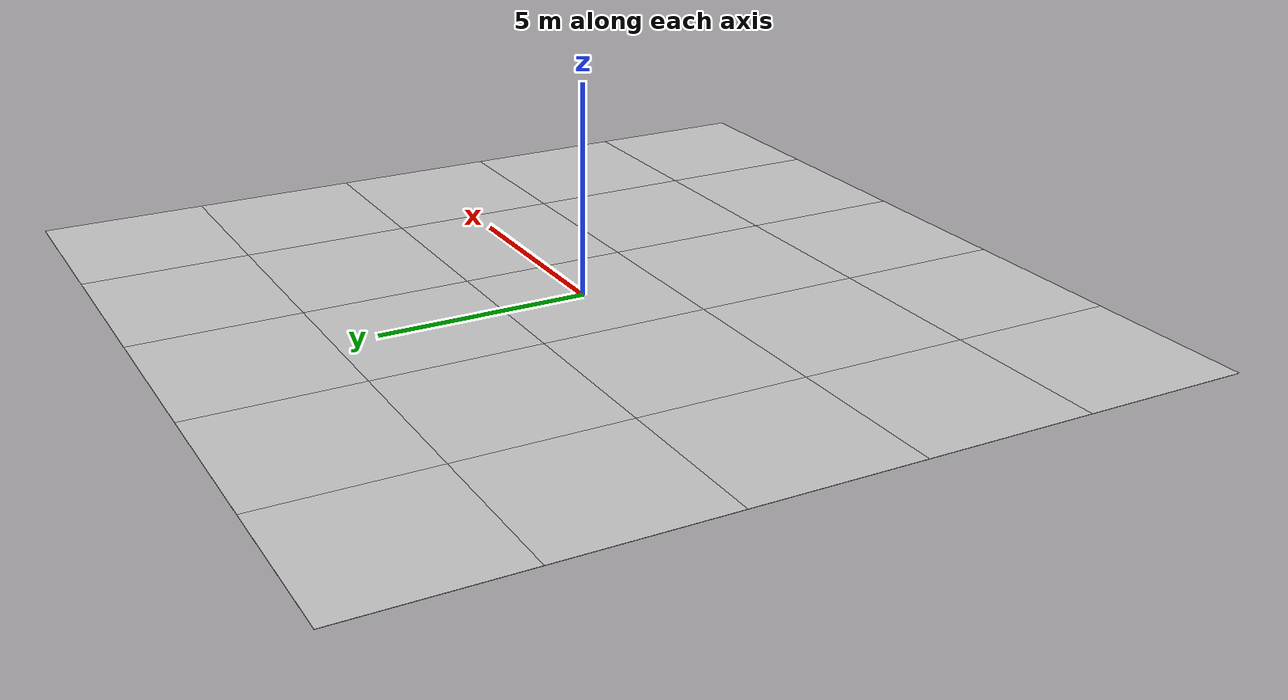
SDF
<?xml version="1.0" ?>
<sdf version="1.7">
<model name="rocky_asphalt_20x20">
    <pose>0 0 0 0 0 0</pose>
    <static>true</static>

    <include>
        <name>rocky asphalt (-8, -8)</name>
        <uri>model://rocky_asphalt_4x4</uri>
        <pose>-8 -8 0 0 0 0</pose>
    </include>
    <include>
        <name>rocky asphalt (-4, -8)</name>
        <uri>model://rocky_asphalt_4x4</uri>
        <pose>-4 -8 0 0 0 0</pose>
    </include>
    <include>
        <name>rocky asphalt (0, -8)</name>
        <uri>model://rocky_asphalt_4x4</uri>
        <pose>0 -8 0 0 0 0</pose>
    </include>
    <include>
        <name>rocky asphalt (4, -8)</name>
        <uri>model://rocky_asphalt_4x4</uri>
        <pose>4 -8 0 0 0 0</pose>
    </include>
    <include>
        <name>rocky asphalt (8, -8)</name>
        <uri>model://rocky_asphalt_4x4</uri>
        <pose>8 -8 0 0 0 0</pose>
    </include>

    <include>
        <name>rocky asphalt (-8, -4)</name>
        <uri>model://rocky_asphalt_4x4</uri>
        <pose>-8 -4 0 0 0 0</pose>
    </include>
    <include>
        <name>rocky asphalt (-4, -4)</name>
        <uri>model://rocky_asphalt_4x4</uri>
        <pose>-4 -4 0 0 0 0</pose>
    </include>
    <include>
        <name>rocky asphalt (0, -4)</name>
        <uri>model://rocky_asphalt_4x4</uri>
        <pose>0 -4 0 0 0 0</pose>
    </include>
    <include>
        <name>rocky asphalt (4, -4)</name>
        <uri>model://rocky_asphalt_4x4</uri>
        <pose>4 -4 0 0 0 0</pose>
    </include>
    <include>
        <name>rocky asphalt (8, -4)</name>
        <uri>model://rocky_asphalt_4x4</uri>
        <pose>8 -4 0 0 0 0</pose>
    </include>

    <include>
        <name>rocky asphalt (-8, 0)</name>
        <uri>model://rocky_asphalt_4x4</uri>
        <pose>-8 0 0 0 0 0</pose>
    </include>
    <include>
        <name>rocky asphalt (-4, 0)</name>
        <uri>model://rocky_asphalt_4x4</uri>
        <pose>-4 0 0 0 0 0</pose>
    </include>
    <include>
        <name>rocky asphalt (0, 0)</name>
        <uri>model://rocky_asphalt_4x4</uri>
        <pose>0 0 0 0 0 0</pose>
    </include>
    <include>
        <name>rocky asphalt (4, 0)</name>
        <uri>model://rocky_asphalt_4x4</uri>
        <pose>4 0 0 0 0 0</pose>
    </include>
    <include>
        <name>rocky asphalt (8, 0)</name>
        <uri>model://rocky_asphalt_4x4</uri>
        <pose>8 0 0 0 0 0</pose>
    </include>

    <include>
        <name>rocky asphalt (-8, 4)</name>
        <uri>model://rocky_asphalt_4x4</uri>
        <pose>-8 4 0 0 0 0</pose>
    </include>
    <include>
        <name>rocky asphalt (-4, 4)</name>
        <uri>model://rocky_asphalt_4x4</uri>
        <pose>-4 4 0 0 0 0</pose>
    </include>
    <include>
        <name>rocky asphalt (0, 4)</name>
        <uri>model://rocky_asphalt_4x4</uri>
        <pose>0 4 0 0 0 0</pose>
    </include>
    <include>
        <name>rocky asphalt (4, 4)</name>
        <uri>model://rocky_asphalt_4x4</uri>
        <pose>4 4 0 0 0 0</pose>
    </include>
    <include>
        <name>rocky asphalt (8, 4)</name>
        <uri>model://rocky_asphalt_4x4</uri>
        <pose>8 4 0 0 0 0</pose>
    </include>

    <include>
        <name>rocky asphalt (-8 8)</name>
        <uri>model://rocky_asphalt_4x4</uri>
        <pose>-8 8 0 0 0 0</pose>
    </include>
    <include>
        <name>rocky asphalt (-4, 8)</name>
        <uri>model://rocky_asphalt_4x4</uri>
        <pose>-4 8 0 0 0 0</pose>
    </include>
    <include>
        <name>rocky asphalt (0, 8)</name>
        <uri>model://rocky_asphalt_4x4</uri>
        <pose>0 8 0 0 0 0</pose>
    </include>
    <include>
        <name>rocky asphalt (4, 8)</name>
        <uri>model://rocky_asphalt_4x4</uri>
        <pose>4 8 0 0 0 0</pose>
    </include>
    <include>
        <name>rocky asphalt (8, 8)</name>
        <uri>model://rocky_asphalt_4x4</uri>
        <pose>8 8 0 0 0 0</pose>
    </include>

</model>
</sdf>

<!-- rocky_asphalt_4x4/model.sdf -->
<sdf version="1.7">
<model name="rocky_asphalt_4x4">
    <pose>0 0 0 0 0 0</pose>
    <static>true</static>
    <link name="link">
        <visual name="visual">
            <geometry>
                <box>
                    <size>4 4 0.01</size>
                </box>
            </geometry>
            <material>
                <render_order>4</render_order>
                <ambient>0.8 0.8 0.8 1</ambient>
                <diffuse>0.8 0.8 0.8 1</diffuse>
                <specular>0.8 0.8 0.8 1</specular>
                <pbr>
                    <metal>
                        <albedo_map>materials/textures/rocky_asphalt1_albedo.png</albedo_map>
                        <ambient_occlusion_map>materials/textures/rocky_asphalt1_ao.png</ambient_occlusion_map>
                        <metalness_map>materials/textures/rocky_asphalt1_Metallic.png</metalness_map>
                        <normal_map>materials/textures/rocky_asphalt1_Normal-ogl.png</normal_map>
                        <roughness_map>materials/textures/rocky_asphalt1_Roughness.png</roughness_map>
                        <roughness>0.5</roughness>
                        <metalness>0.1</metalness>
                    </metal>
                </pbr>
            </material>
        </visual>
    </link>
</model>
</sdf>
